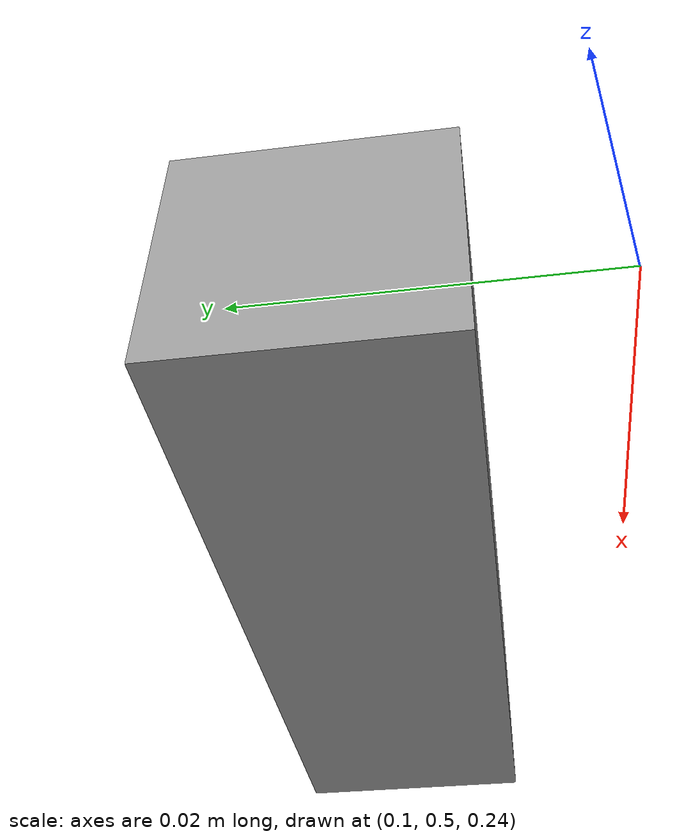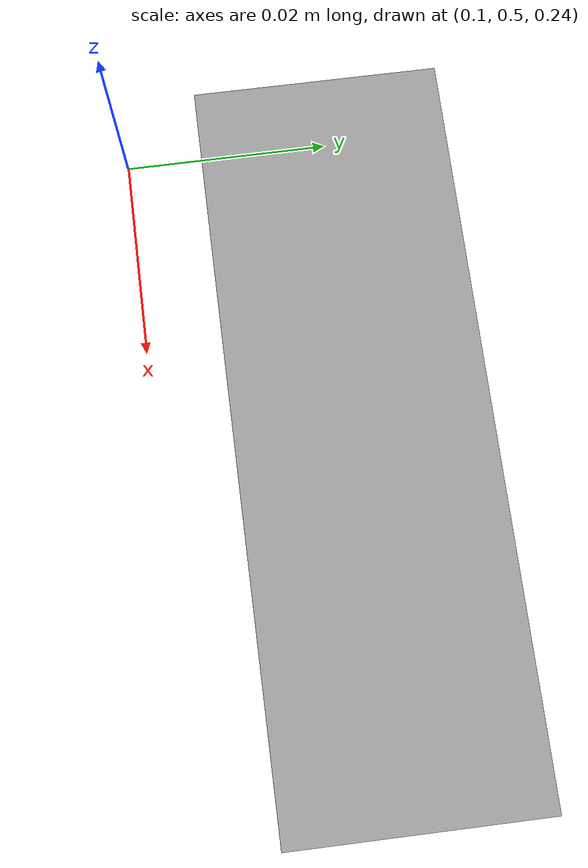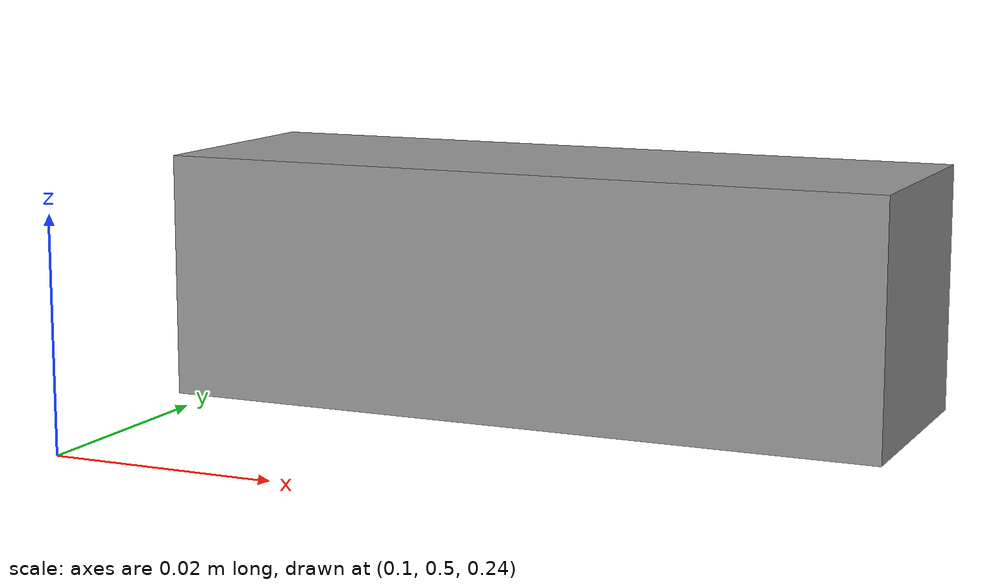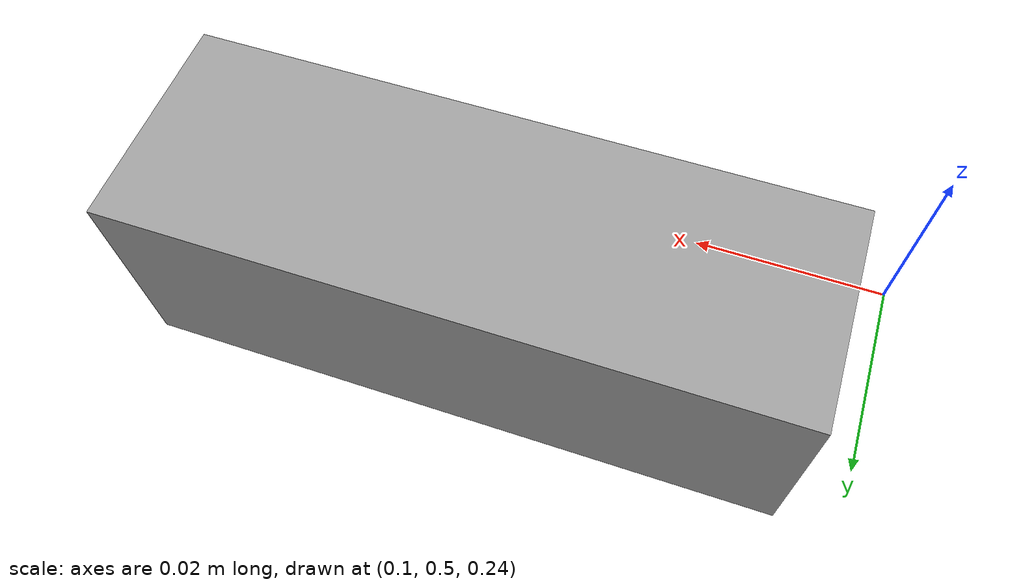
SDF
<?xml version='1.0'?>
<sdf version='1.6'>
  <model name='right_finger_box'>
    <link name='link'>
      <inertial>
        <mass>1</mass>
        <inertia>
          <ixx>0.166667</ixx>
          <ixy>0</ixy>
          <ixz>0</ixz>
          <iyy>0.166667</iyy>
          <iyz>0</iyz>
          <izz>0.166667</izz>
        </inertia>
        <pose frame=''>0 0 0 0 -0 0</pose>
      </inertial>
      <self_collide>0</self_collide>
      <enable_wind>0</enable_wind>
      <kinematic>0</kinematic>
      <pose frame=''>0.136779 0.518018 0.254238 0 -0 0</pose>
      <gravity>1</gravity>
      <visual name='visual'>
        <geometry>
          <box>
            <size>0.06 0.02 0.02</size>
          </box>
        </geometry>
        <material>
          <script>
            <name>Gazebo/Grey</name>
            <uri>file://media/materials/scripts/gazebo.material</uri>
          </script>
          <shader type='vertex'>
            <normal_map>__default__</normal_map>
          </shader>
          <ambient>0.3 0.3 0.3 1</ambient>
          <diffuse>0.7 0.7 0.7 1</diffuse>
          <specular>0.01 0.01 0.01 1</specular>
          <emissive>0 0 0 1</emissive>
        </material>
        <pose frame=''>0 0 0 0 -0 0</pose>
        <transparency>0</transparency>
        <cast_shadows>1</cast_shadows>
      </visual>
      <collision name='collision'>
        <laser_retro>0</laser_retro>
        <max_contacts>10</max_contacts>
        <pose frame=''>0 0 0 0 -0 0</pose>
        <geometry>
          <box>
            <size>0.06 0.02 0.02</size>
          </box>
        </geometry>
        <surface>
          <friction>
            <ode>
              <mu>0.5</mu>
              <mu2>0.5</mu2>
              <fdir1>0 0 0</fdir1>
              <slip1>0</slip1>
              <slip2>0</slip2>
            </ode>
            <torsional>
              <coefficient>0.5</coefficient>
              <patch_radius>0</patch_radius>
              <surface_radius>0</surface_radius>
              <use_patch_radius>1</use_patch_radius>
              <ode>
                <slip>0</slip>
              </ode>
            </torsional>
          </friction>
          <bounce>
            <restitution_coefficient>0</restitution_coefficient>
            <threshold>1e+06</threshold>
          </bounce>
          <contact>
            <collide_without_contact>0</collide_without_contact>
            <collide_without_contact_bitmask>1</collide_without_contact_bitmask>
            <collide_bitmask>1</collide_bitmask>
            <ode>
              <soft_cfm>0.8</soft_cfm>
              <soft_erp>0.8</soft_erp>
              <kp>10</kp>
              <kd>2500</kd>
              <max_vel>0.1</max_vel>
              <min_depth>0.001</min_depth>
            </ode>
            <bullet>
              <split_impulse>1</split_impulse>
              <split_impulse_penetration_threshold>-0.01</split_impulse_penetration_threshold>
              <soft_cfm>0.8</soft_cfm>
              <soft_erp>0.8</soft_erp>
              <kp>10</kp>
              <kd>2500</kd>
            </bullet>
          </contact>
        </surface>
      </collision>
    </link>
    <static>0</static>
    <allow_auto_disable>1</allow_auto_disable>
  </model>
</sdf>
